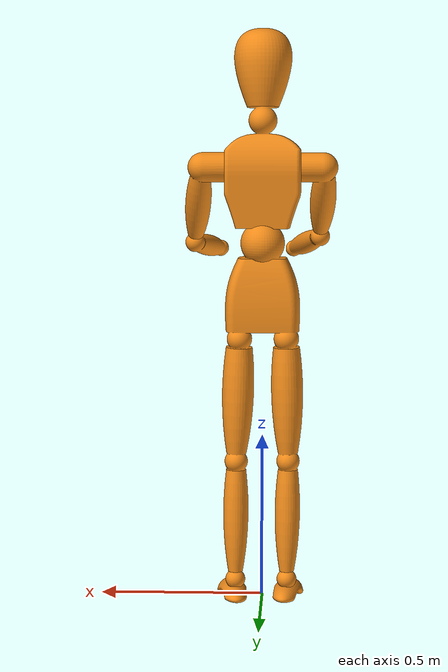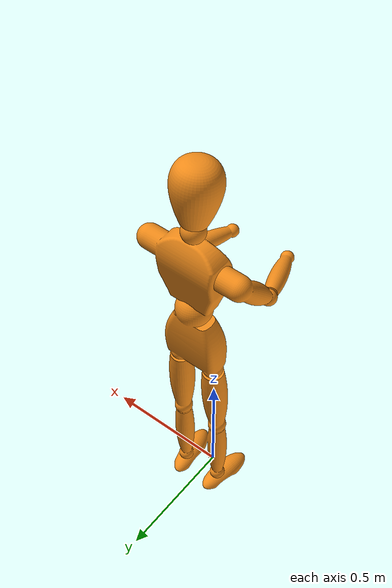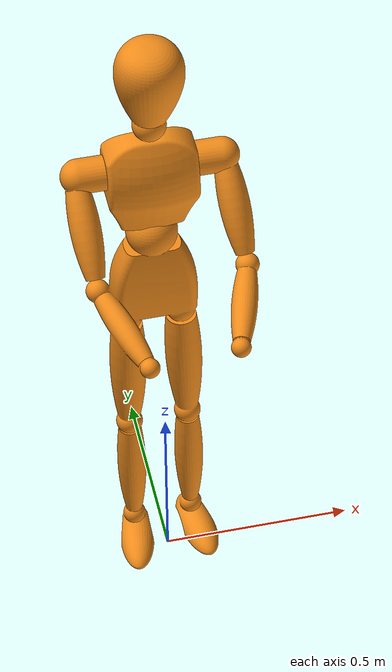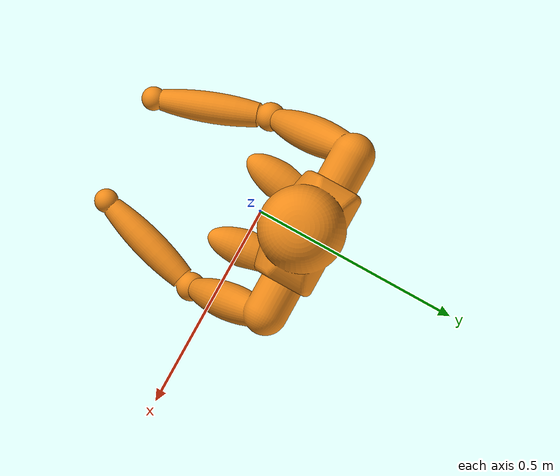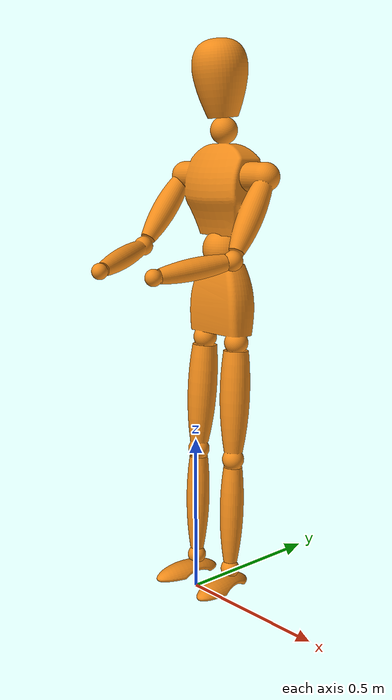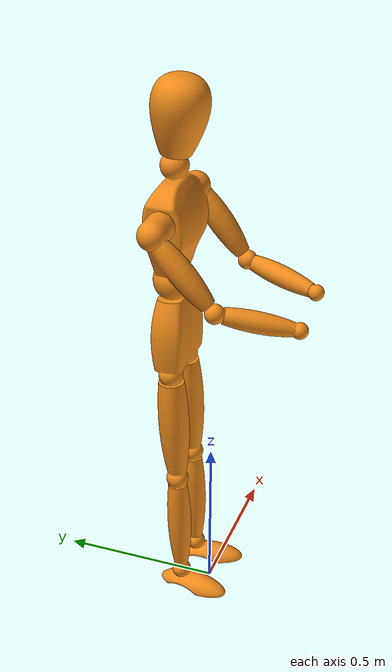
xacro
<?xml version="1.0" encoding="utf-8"?>

<robot name="human_drone" xmlns:xacro="http://www.ros.org/wiki/xacro">

  <link
    name="hd_base_link">
    <inertial>
      <origin
        xyz="0 0 0"
        rpy="0 0 0" />
      <mass
        value="0.5" />
      <inertia
        ixx="0.14356"
        ixy="0.00061629"
        ixz="-0.00030473"
        iyy="0.082265"
        iyz="0.0059121"
        izz="0.16567" />
    </inertial>
    <visual>
      <origin
        xyz="-0.016521 0.11994 1.15"
        rpy="0 0 0" />
      <geometry>
        <mesh
          filename="package://cobot-env/meshes/human_drone.STL" />
      </geometry>
    </visual>
    <collision>
      <origin
        xyz="-0.016521 0.11994 1.15"
        rpy="0 0 0" />
      <geometry>
        <mesh
          filename="package://cobot-env/meshes/human_drone.STL" />
      </geometry>
    </collision>
  </link>

  <gazebo reference="hd_base_link">
    <material> Gazebo/Orange </material>
    <collision>
        <surface>
          <contact>
            <collide_without_contact>true</collide_without_contact>
          </contact>
        </surface>
      </collision>
    <selfCollide>true</selfCollide>
  </gazebo>

</robot>
